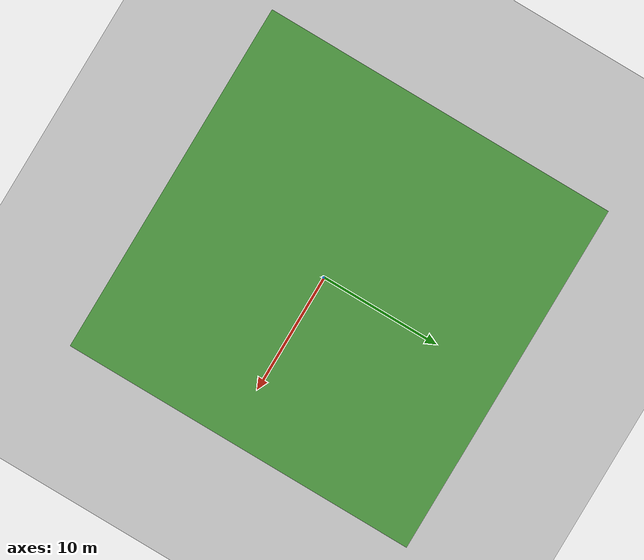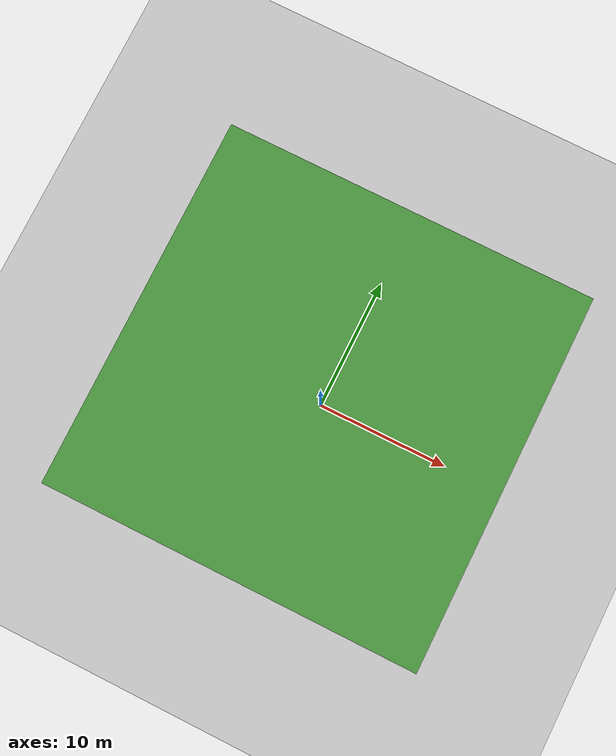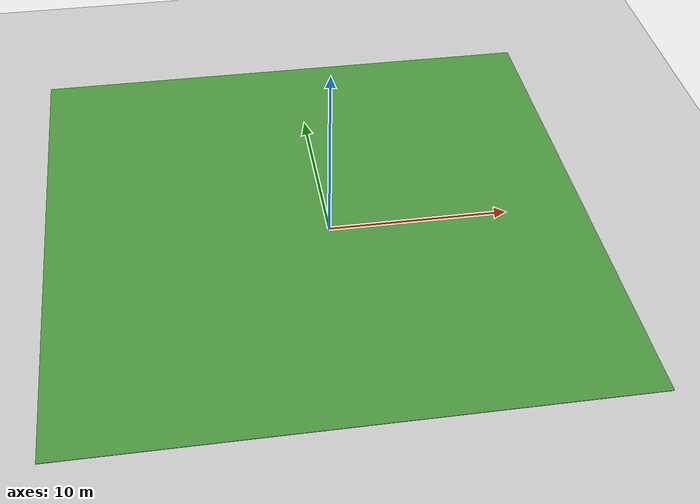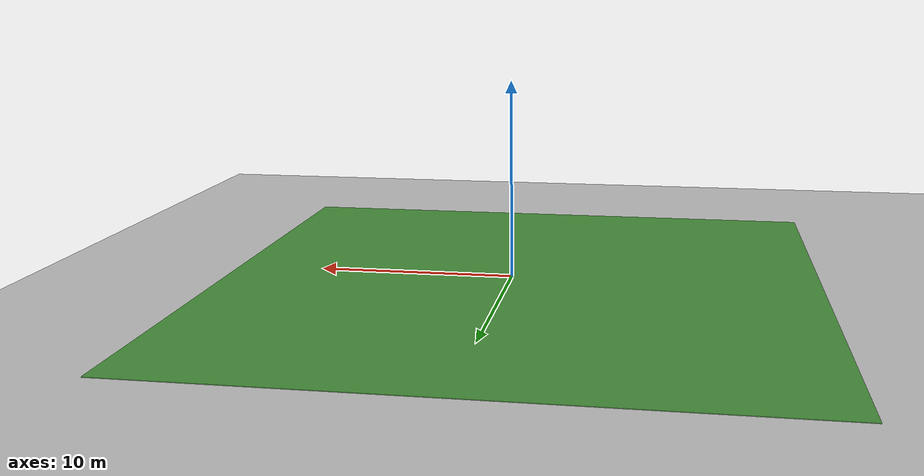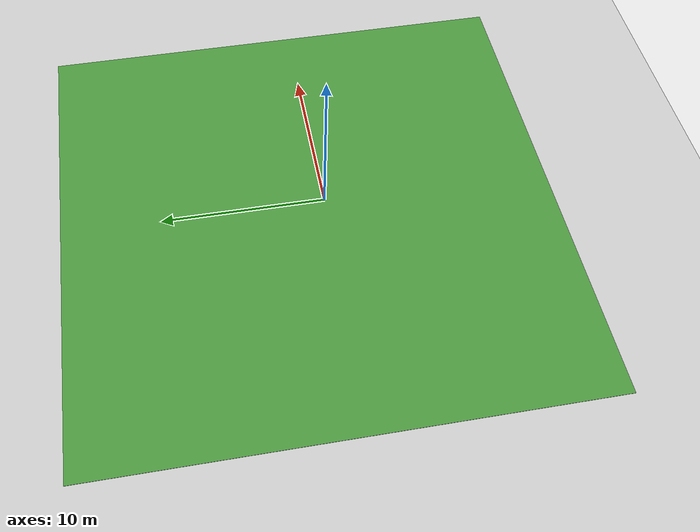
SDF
<sdf version="1.4">
 <world name="default">
  <light name="sun" type="directional">
   <pose>0 0 10 0 -0 0</pose>
   <diffuse>0.8 0.8 0.8 1</diffuse>
   <specular>0.2 0.2 0.2 1</specular>
   <attenuation>
    <range>1000</range>
    <constant>0.9</constant>
    <linear>0.01</linear>
    <quadratic>0.001</quadratic>
   </attenuation>
   <direction>-0.5 0.1 -0.9</direction>
  </light>
  <model name="ground_plane">
   <static>1</static>
   <link name="link">
    <collision name="collision">
     <geometry><plane><normal>0 0 1</normal><size>100 100</size></plane></geometry>
     <surface><friction><ode><mu>100</mu><mu2>50</mu2></ode></friction></surface>
    </collision>
    <visual name="visual">
     <cast_shadows>0</cast_shadows>
     <geometry><plane><normal>0 0 1</normal><size>100 100</size></plane></geometry>
     <material>
      <script><uri>file://media/materials/scripts/gazebo.material</uri><name>Gazebo/Grey</name></script>
     </material>
    </visual>
    <velocity_decay><linear>0</linear><angular>0</angular></velocity_decay>
   </link>
  </model>
  <physics type="ode">
   <max_step_size>0.001</max_step_size>
   <real_time_factor>1</real_time_factor>
   <real_time_update_rate>1000</real_time_update_rate>
   <gravity>0 0 -9.8</gravity>
  </physics>
  <scene><ambient>0.4 0.4 0.4 1</ambient><background>0.7 0.7 0.7 1</background><shadows>1</shadows></scene>
  <spherical_coordinates>
   <surface_model>EARTH_WGS84</surface_model>
   <latitude_deg>0</latitude_deg>
   <longitude_deg>0</longitude_deg>
   <elevation>0</elevation>
   <heading_deg>0</heading_deg>
  </spherical_coordinates>
  <model name="grass_plane">
   <static>1</static>
   <link name="grass_plane">
    <collision name="collision">
     <geometry><plane><normal>0 0 1</normal><size>30 30</size></plane></geometry>
     <surface><friction><ode><mu>0.5</mu><mu2>0.5</mu2></ode></friction></surface>
    </collision>
    <visual name="visual">
     <cast_shadows>0</cast_shadows>
     <geometry><plane><normal>0 0 1</normal><size>30 30</size></plane></geometry>
     <material>
      <script>
       <uri>model://vrc_driving_terrain/materials/scripts</uri>
       <uri>model://vrc_driving_terrain/materials/textures</uri>
       <name>vrc/grass</name>
      </script>
     </material>
    </visual>
    <velocity_decay><linear>0</linear><angular>0</angular></velocity_decay>
   </link>
   <pose>-0.515212 1 0 0 -0 0</pose>
  </model>
 </world>
</sdf>
